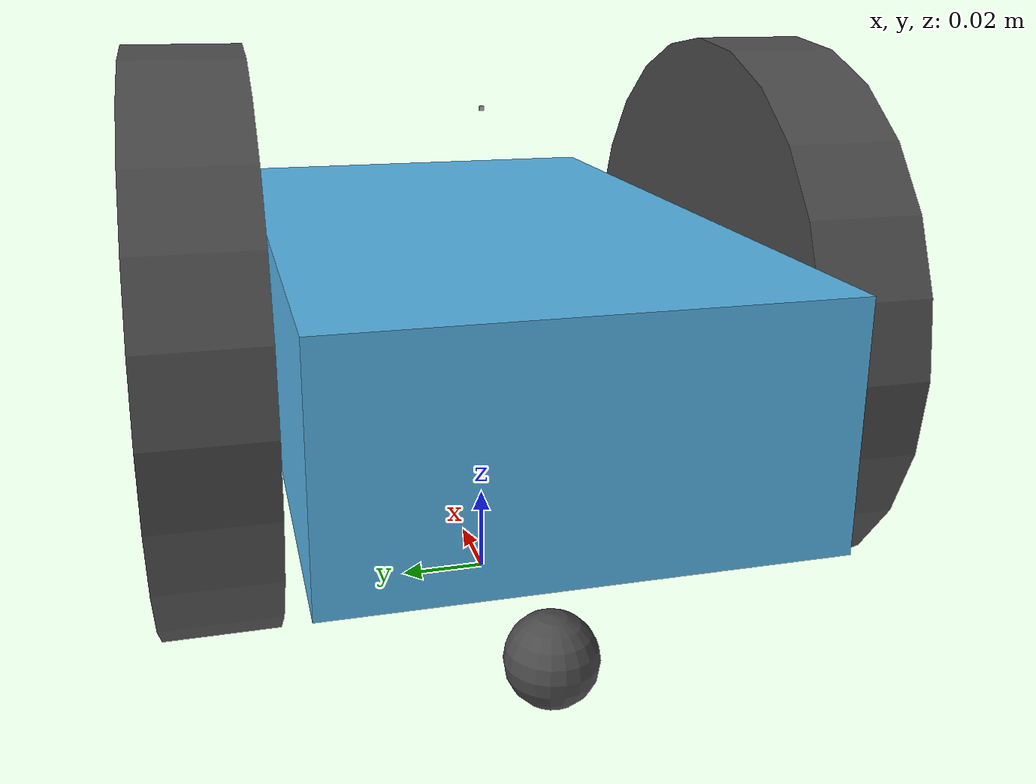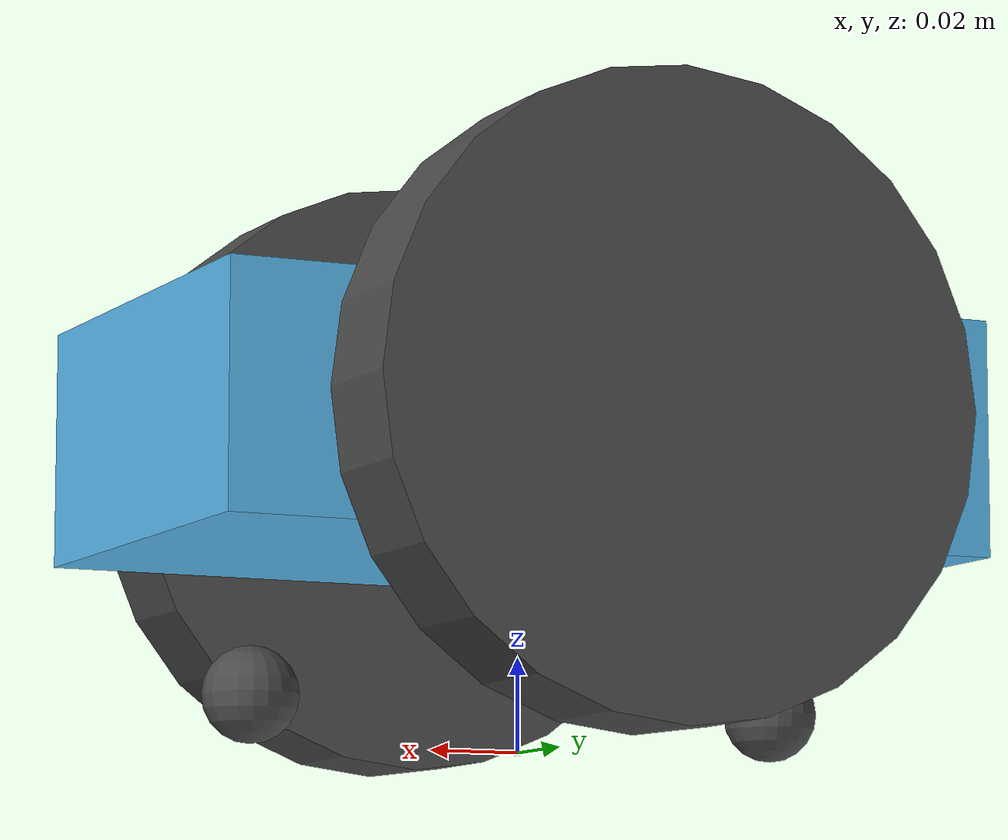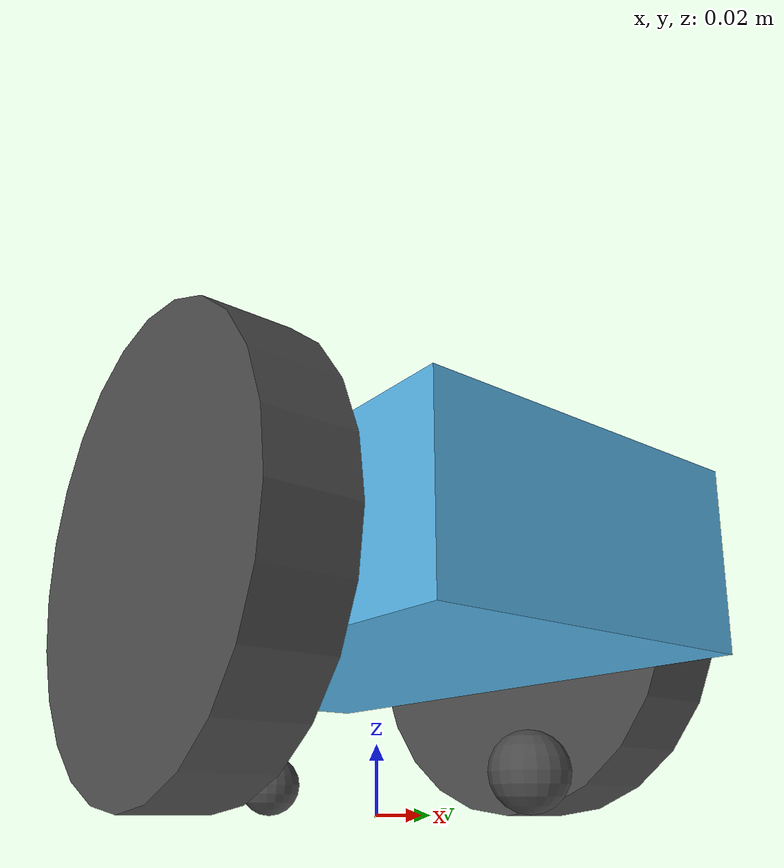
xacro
<?xml version="1.0"?>
<robot name="robot" xmlns:xacro="http://ros.org/wiki/xacro">

	<!-- Imported elements -->
	<xacro:arg name="use_nominal_extrinsics" default="false" />

    <xacro:include filename="parameter.xacro" />
	<!-- import xacro files for the aitoXS robot -->
	<!-- import the robot base xacro file  -->
	<xacro:include filename="base.xacro" />

	<!-- import the robot wheel xacro file  -->
	<xacro:include filename="wheel.xacro" />
	<xacro:include filename="caster.xacro" />
	<xacro:include filename="sensors.xacro" />

	<xacro:robot_base />
	<xacro:robot_wheel prefix="left" parent="base_link" angle="-1"/>
	<xacro:robot_wheel prefix="right" parent="base_link" angle="1"/>
	<xacro:robot_caster prefix="front" parent="base_link" front="1"/>
	<xacro:robot_caster prefix="back" parent="base_link" front="-1"/>

	<xacro:sensor_imu prefix="base" parent="base_link" rate="30"/>
	<xacro:sensor_2dlidar prefix="base" parent="base_link" rate="20"/>
	<gazebo>
		<plugin name='diff_drive' filename='libgazebo_ros_diff_drive.so'>
			<ros>
				<!-- Set namespace -->
				<namespace>/differential_drive_controller</namespace>
			</ros>

			<!-- Replace camelCase elements with camel_case ones -->
			<update_rate>50</update_rate>
			<left_joint>left_wheel_joint</left_joint>
			<right_joint>right_wheel_joint</right_joint>
			<wheel_separation>${track}</wheel_separation>
			<wheel_diameter>${2*wheel_radius}</wheel_diameter>
			<odometry_frame>odom</odometry_frame>

			<!-- wheelTorque and wheelAcceleration now have max_ prefix -->
			<max_wheel_torque>20</max_wheel_torque>
			<max_acceleration>1.0</max_acceleration>
			<!-- output -->
			<publish_odom>true</publish_odom>
			<publish_odom_tf>true</publish_odom_tf>

			<odometry_frame>odom</odometry_frame>
			<robot_base_frame>base_footprint</robot_base_frame>
		</plugin>
	</gazebo>
	<gazebo>
		<plugin name="joint_state_publisher" filename="libgazebo_ros_joint_state_publisher.so">
			<update_rate>50</update_rate>
			<joint_name>left_wheel_joint</joint_name>
			<joint_name>right_wheel_joint</joint_name>
		</plugin>
	</gazebo>
</robot>

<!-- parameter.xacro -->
<robot name="parameter" xmlns:xacro="http://ros.org/wiki/xacro">
    <xacro:property name="M_PI" value="3.1415926535897931" />
    <!--Chassis Parameter-->
    <xacro:property name="base_length" value="0.17" /> <!-- value="1.40" -->
    <xacro:property name="base_width" value="0.10" /> <!-- value="0.705" -->
    <xacro:property name="base_height" value="0.05" /> <!-- value="0.632" -->
    <xacro:property name="base_mass" value="0.2" /> <!-- 25 in kg-->
    <!--Wheel Parameter-->
    <xacro:property name="wheel_radius" value="0.065"/>
    <xacro:property name="wheel_height" value="0.025" />
    <xacro:property name="wheel_mass" value="0.050" /> <!-- 1.5 in kg-->
    <xacro:property name="track" value="0.13" /> <!--track/2-->
    <xacro:property name="caster_radius" value="0.01"/>
    <xacro:property name="caster_mass" value="0.01"/>
    <xacro:property name="caster_dist" value="0.06"/>
</robot>

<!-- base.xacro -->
<robot name="base" xmlns:xacro="http://ros.org/wiki/xacro">

    <xacro:macro name="box_inertia" params="m l w h">
        <inertia  ixx="${m*(h*h+w*w)/12}" ixy = "0" ixz = "0"
                iyy="${m*(l*l+h*h)/12}" iyz = "0"
                izz="${m*(w*w+l*l)/12}" />
    </xacro:macro>
    <xacro:macro name="robot_base">
        <link name="base_footprint">
            <visual>
                <origin xyz="0 0 0" rpy="0 0 0" />
                <geometry>
                    <box size="0.001 0.001 0.001" />
                </geometry>
            </visual>
        </link>
        <joint name="base_footprint_link_joint" type="fixed">
            <origin xyz="0 0 ${wheel_radius}" rpy="0 0 0" />
            <parent link="base_footprint"/>
            <child link="base_link" />
        </joint>
        <link name="base_link">
            <inertial>
                <mass value="${base_mass}" />
                <origin xyz="0.0 0 0.0" />
                <!--The 3x3 rotational inertia matrix. -->
                <xacro:box_inertia  m="${base_mass}" l="${base_length}" w="${base_width}" h="${base_height}" />
            </inertial>
            <visual>
                <origin xyz="0.0 0 0" rpy="0 0 0" />
                <geometry>
                    <box size="${base_length} ${base_width} ${base_height}" />
                </geometry>
            </visual>
            <collision>
                <origin xyz="0 0 0" />
                <geometry>
                    <box size="${base_length} ${base_width} ${base_height}" />
                </geometry>
            </collision>
        </link>
    </xacro:macro>
</robot>

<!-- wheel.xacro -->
<robot name="wheel" xmlns:xacro="http://www.ros.org/wiki/xacro">

  <xacro:macro name="cylinder_inertia" params="m r h">
    <inertia  ixx="${m*(3*r*r+h*h)/12}" ixy = "0" ixz = "0"
              iyy="${m*(3*r*r+h*h)/12}" iyz = "0"
              izz="${m*r*r/2}" />
  </xacro:macro>

  <xacro:macro name="robot_wheel" params="prefix parent angle">
    <link name="${prefix}_wheel">
      <visual>
        <origin xyz="0 0 0" rpy="${angle*M_PI/2} 0  0 " />
        <geometry>
          <cylinder length="${wheel_height}" radius="${wheel_radius}" />
        </geometry>
        <material name="DarkGray" />
      </visual>
      <collision>
        <origin xyz="0 0 0" rpy="${angle*M_PI/2} 0 0 " />
        <geometry>
          <cylinder length="${wheel_height}" radius="${wheel_radius}" />
        </geometry>
      </collision>
      <inertial>
        <mass value="${wheel_mass}" />
        <origin xyz="0 0 0" rpy="${-angle*M_PI/2} 0 0"/>
        <xacro:cylinder_inertia  m="${wheel_mass}" r="${wheel_radius}" h="${wheel_height}" />
      </inertial>
    </link>

    <gazebo reference="${prefix}_wheel">
      <mu1 value="1.0"/>
      <mu2 value="1.0"/>
      <kp  value="10000000.0" />
      <kd  value="1.0" />
      <fdir1 value="1 0 0"/>
      <turnGravityOff>false</turnGravityOff>
      <minDepth>0.005</minDepth>
    </gazebo>

    <joint name="${prefix}_wheel_joint" type="continuous">
      <parent link="${parent}"/>
      <child link="${prefix}_wheel"/>
      <origin xyz="0 ${-angle*track/2} 0" rpy="0 0 0" />
      <axis xyz="0 1 0" rpy="0 0 0" />
      <limit effort="10" velocity="10"/>
      <joint_properties damping="0.0" friction="0.0"/>
    </joint>

    <transmission name="${prefix}_wheel_joint_trans">
      <type>transmission_interface/SimpleTransmission</type>
      <actuator name="${prefix}_wheel_joint_motor">
        <hardwareInterface>hardware_interface/VelocityJointInterface</hardwareInterface>
        <mechanicalReduction>1</mechanicalReduction>
      </actuator>
      <joint name="${prefix}_wheel_joint">
        <hardwareInterface>hardware_interface/VelocityJointInterface</hardwareInterface>
      </joint>
    </transmission>
  </xacro:macro>

</robot>

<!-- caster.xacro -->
<robot name="caster" xmlns:xacro="http://www.ros.org/wiki/xacro">

  <xacro:macro name="sphere_inertia" params="m r">
    <inertia  ixx="${2*m*r*r/5}" ixy = "0" ixz = "0"
              iyy="${2*m*r*r/5}" iyz = "0"
              izz="${2*m*r*r/5}" />
  </xacro:macro>

  <xacro:macro name="robot_caster" params="prefix parent front">
    <link name="${prefix}_caster">
      <visual>
        <origin xyz="0 0 0" rpy="0  0  0 " />
        <geometry>
          <sphere radius="${caster_radius}" />
        </geometry>
        <material name="DarkGray" />
      </visual>
      <collision>
        <origin xyz="0 0 0" rpy="0 0 0 " />
        <geometry>
          <sphere radius="${caster_radius}" />
        </geometry>
      </collision>
      <inertial>
        <mass value="${caster_mass}" />
        <origin xyz="0 0 0" rpy="0 0 0"/>
        <xacro:sphere_inertia  m="${caster_mass}" r="${caster_radius}" />
      </inertial>
    </link>
    <gazebo reference="${prefix}_caster">
      <mu1 value="0.0"/>
      <mu2 value="0.0"/>
      <kp  value="10000000.0" />
      <kd  value="1.0" />
      <fdir1 value="1 0 0"/>
      <turnGravityOff>false</turnGravityOff>
      <minDepth>0.005</minDepth>
    </gazebo>

    <joint name="${prefix}_caster_joint" type="fixed">
      <parent link="${parent}"/>
      <child link="${prefix}_caster"/>
      <origin xyz="${front*caster_dist} 0 ${-(wheel_radius-caster_radius)}" rpy="0 0 0" />
    </joint>

  </xacro:macro>

</robot>

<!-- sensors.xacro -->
<robot name="sensors" xmlns:xacro="http://www.ros.org/wiki/xacro">

  <xacro:macro name="sensor_imu" params="prefix parent rate">
    <joint name="${prefix}_imu_joint" type="fixed">
        <origin xyz="0 0 0" rpy="0 0 0" />
        <parent link="${parent}"/>
        <child link="${prefix}_imu_link"/>
    </joint>
    <link name="${prefix}_imu_link">
        <inertial>
            <mass value="0.001"/>
            <origin rpy="0 0 0" xyz="0 0 0"/>
            <inertia ixx="0.0001" ixy="0" ixz="0" iyy="0.000001" iyz="0" izz="0.0001"/>
        </inertial>
        <visual>
            <origin rpy="0 0 0" xyz="0 0 0"/>
            <geometry>
            <box size="0.001 0.001 0.001"/>
            </geometry>
        </visual>
        <collision>
            <origin rpy="0 0 0" xyz="0 0 0"/>
            <geometry>
            <box size="0.001 0.001 0.001"/>
            </geometry>
        </collision>
    </link>
    <gazebo reference="${prefix}_imu_link">
        <sensor name="${prefix}_imu" type="imu">
            <always_on>true</always_on>
            <!-- Publish at 30 hz -->
            <update_rate>50</update_rate>
            <plugin name="${prefix}_imu" filename="libgazebo_ros_imu_sensor.so">
            <!-- frame_name ommited, will be "my_link" -->
            </plugin>
        </sensor>
    </gazebo>
  </xacro:macro>

  <xacro:macro name="sensor_2dlidar" params="prefix parent rate">
    <joint name="${prefix}_2dlidar_joint" type="fixed">
        <origin xyz="0 0 ${base_height}" rpy="0 0 0" />
        <parent link="${parent}"/>
        <child link="${prefix}_2dlidar_link"/>
    </joint>
    <link name="${prefix}_2dlidar_link">
        <inertial>
            <mass value="0.001"/>
            <origin rpy="0 0 0" xyz="0 0 0"/>
            <inertia ixx="0.0001" ixy="0" ixz="0" iyy="0.000001" iyz="0" izz="0.0001"/>
        </inertial>
        <visual>
            <origin rpy="0 0 0" xyz="0 0 0"/>
            <geometry>
            <box size="0.001 0.001 0.001"/>
            </geometry>
        </visual>
        <collision>
            <origin rpy="0 0 0" xyz="0 0 0"/>
            <geometry>
            <box size="0.001 0.001 0.001"/>
            </geometry>
        </collision>
    </link>
    <gazebo reference="${prefix}_2dlidar_link">
        <!-- Visuals / Collisions omitted for this example -->
        <sensor type="ray" name="${prefix}_2dlidar">
            <ray>
                <noise>
                    <type>gaussian</type>
                    <mean>0.0</mean>
                    <stddev>0.01</stddev>
                </noise>
                <scan>
                    <horizontal>
                        <samples>720</samples>
                        <resolution>1</resolution>
                        <min_angle>-3.14</min_angle>
                        <max_angle>3.14</max_angle>
                    </horizontal>
                </scan>
                <range>
                    <min>0.10</min>
                    <max>10.0</max>
                    <resolution>0.03</resolution>
                </range>
            </ray>
            <always_on>true</always_on>
            <visualize>true</visualize>
            <!-- Using gazebo's update rate instead of plugin's -->
            <update_rate>20</update_rate>
            <!-- Using gazebo's noise instead of plugin's -->

            <plugin name="${prefix}_2dlidar" filename="libgazebo_ros_ray_sensor.so">
            <!-- Change namespace and output topic so published topic is /rrbot/laser/scan -->
            <ros>
            </ros>
            <!-- Set output to sensor_msgs/LaserScan to get same output type as gazebo_ros_laser -->
            <output_type>sensor_msgs/LaserScan</output_type>
            </plugin>
        </sensor>
    </gazebo>
  </xacro:macro>

</robot>
